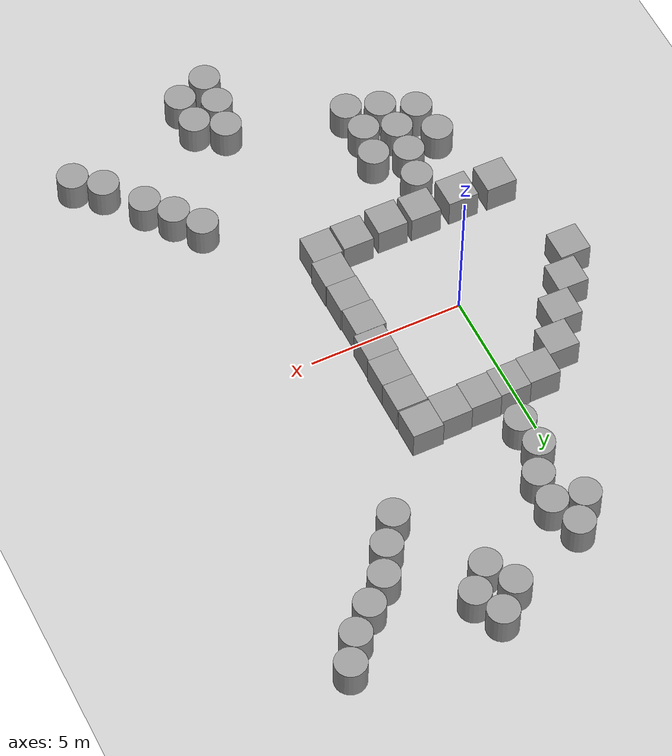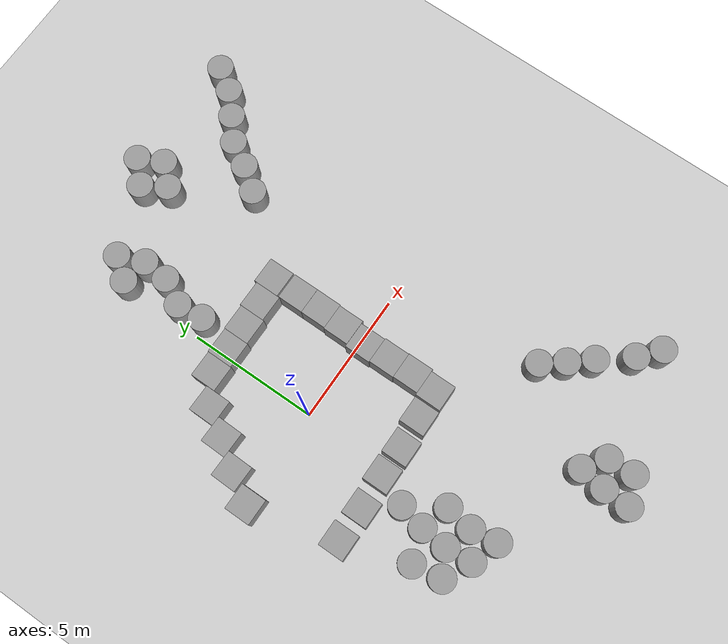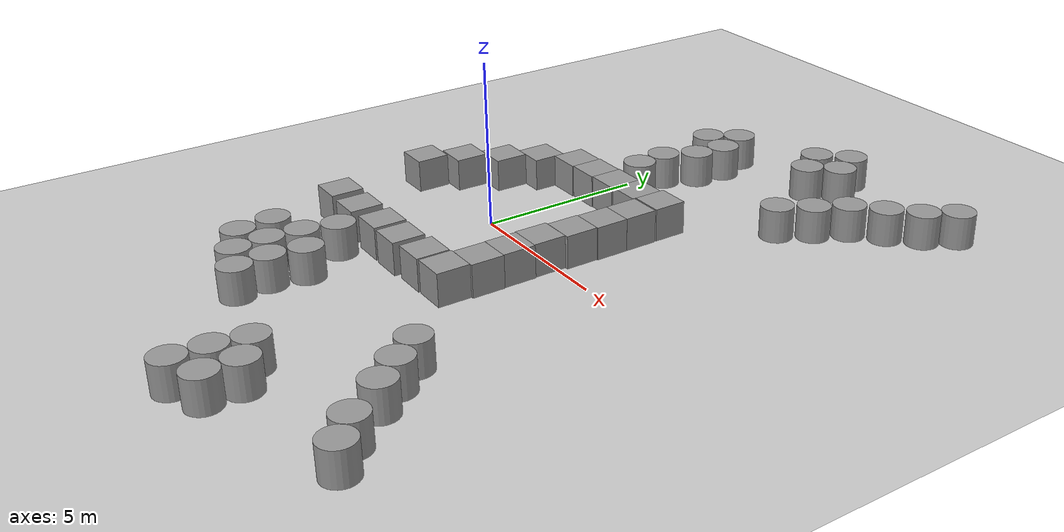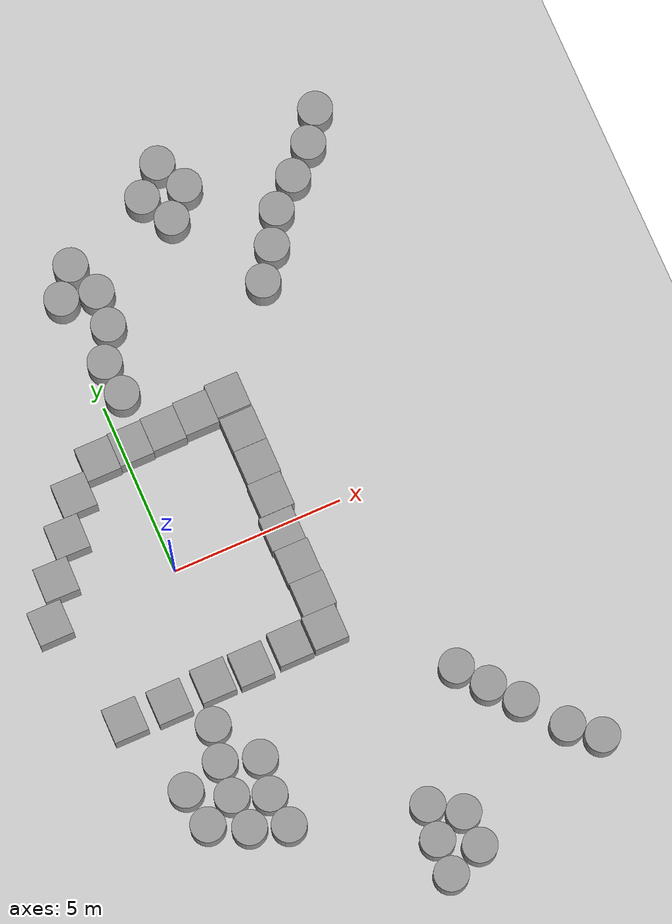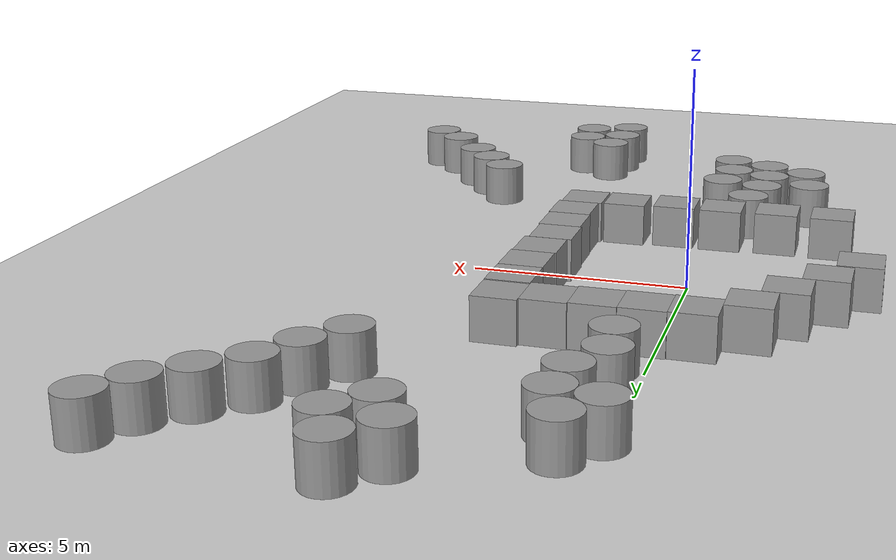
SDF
<sdf version="1.6">
 <world name="default">
  <model name="ground_plane">
   <static>1</static>
   <link name="link">
    <collision name="collision">
     <geometry><plane><normal>0 0 1</normal><size>100 100</size></plane></geometry>
     <surface>
      <contact><collide_bitmask>65535</collide_bitmask></contact>
      <friction><ode><mu>100</mu><mu2>50</mu2></ode></friction>
     </surface>
    </collision>
    <visual name="visual">
     <cast_shadows>0</cast_shadows>
     <geometry><plane><normal>0 0 1</normal><size>100 100</size></plane></geometry>
     <material>
      <script><uri>file://media/materials/scripts/gazebo.material</uri><name>Gazebo/Grey</name></script>
     </material>
    </visual>
   </link>
  </model>
  <light name="sun" type="directional">
   <pose>0 0 10 0 -0 0</pose>
   <diffuse>0.8 0.8 0.8 1</diffuse>
   <specular>0.2 0.2 0.2 1</specular>
   <attenuation>
    <range>1000</range>
    <constant>0.9</constant>
    <linear>0.01</linear>
    <quadratic>0.001</quadratic>
   </attenuation>
   <direction>-0.5 0.1 -0.9</direction>
  </light>
  <gravity>0 0 -9.8</gravity>
  <magnetic_field>6e-06 2.3e-05 -4.2e-05</magnetic_field>
  <atmosphere type="adiabatic"/>
  <physics name="default_physics" default="0" type="ode">
   <max_step_size>0.001</max_step_size>
   <real_time_factor>1</real_time_factor>
   <real_time_update_rate>1000</real_time_update_rate>
  </physics>
  <scene><ambient>0.4 0.4 0.4 1</ambient><background>0.7 0.7 0.7 1</background><shadows>1</shadows></scene>
  <spherical_coordinates>
   <surface_model>EARTH_WGS84</surface_model>
   <latitude_deg>0</latitude_deg>
   <longitude_deg>0</longitude_deg>
   <elevation>0</elevation>
   <heading_deg>0</heading_deg>
  </spherical_coordinates>
  <model name="unit_box">
   <pose>3.11319 -3.25022 0.499995 -0 1e-05 -0.000176</pose>
   <link name="link">
    <inertial>
     <mass>1</mass>
     <inertia>
      <ixx>0.166667</ixx>
      <ixy>0</ixy>
      <ixz>0</ixz>
      <iyy>0.166667</iyy>
      <iyz>0</iyz>
      <izz>0.166667</izz>
     </inertia>
    </inertial>
    <collision name="collision"><geometry><box><size>1 1 1</size></box></geometry></collision>
    <visual name="visual">
     <geometry><box><size>1 1 1</size></box></geometry>
     <material>
      <script><name>Gazebo/Grey</name><uri>file://media/materials/scripts/gazebo.material</uri></script>
     </material>
    </visual>
   </link>
  </model>
  <model name="unit_box_clone">
   <pose>3.18532 -2.25012 0.499995 0 -1e-05 -0.000455</pose>
   <link name="link">
    <inertial>
     <mass>1</mass>
     <inertia>
      <ixx>0.166667</ixx>
      <ixy>0</ixy>
      <ixz>0</ixz>
      <iyy>0.166667</iyy>
      <iyz>0</iyz>
      <izz>0.166667</izz>
     </inertia>
    </inertial>
    <collision name="collision"><geometry><box><size>1 1 1</size></box></geometry></collision>
    <visual name="visual">
     <geometry><box><size>1 1 1</size></box></geometry>
     <material>
      <script><name>Gazebo/Grey</name><uri>file://media/materials/scripts/gazebo.material</uri></script>
     </material>
    </visual>
   </link>
  </model>
  <model name="unit_box_clone_0">
   <pose>3.16452 -1.24999 0.499995 -1e-05 -0 -0.000646</pose>
   <link name="link">
    <inertial>
     <mass>1</mass>
     <inertia>
      <ixx>0.166667</ixx>
      <ixy>0</ixy>
      <ixz>0</ixz>
      <iyy>0.166667</iyy>
      <iyz>0</iyz>
      <izz>0.166667</izz>
     </inertia>
    </inertial>
    <collision name="collision"><geometry><box><size>1 1 1</size></box></geometry></collision>
    <visual name="visual">
     <geometry><box><size>1 1 1</size></box></geometry>
     <material>
      <script><name>Gazebo/Grey</name><uri>file://media/materials/scripts/gazebo.material</uri></script>
     </material>
    </visual>
   </link>
  </model>
  <model name="unit_box_clone_1">
   <pose>3.12887 -0.249946 0.499995 -1e-05 -0 -0.000676</pose>
   <link name="link">
    <inertial>
     <mass>1</mass>
     <inertia>
      <ixx>0.166667</ixx>
      <ixy>0</ixy>
      <ixz>0</ixz>
      <iyy>0.166667</iyy>
      <iyz>0</iyz>
      <izz>0.166667</izz>
     </inertia>
    </inertial>
    <collision name="collision"><geometry><box><size>1 1 1</size></box></geometry></collision>
    <visual name="visual">
     <geometry><box><size>1 1 1</size></box></geometry>
     <material>
      <script><name>Gazebo/Grey</name><uri>file://media/materials/scripts/gazebo.material</uri></script>
     </material>
    </visual>
   </link>
  </model>
  <model name="unit_box_clone_2">
   <pose>3.22252 0.752914 0.499995 1e-05 -0 -0.000428</pose>
   <link name="link">
    <inertial>
     <mass>1</mass>
     <inertia>
      <ixx>0.166667</ixx>
      <ixy>0</ixy>
      <ixz>0</ixz>
      <iyy>0.166667</iyy>
      <iyz>0</iyz>
      <izz>0.166667</izz>
     </inertia>
    </inertial>
    <collision name="collision"><geometry><box><size>1 1 1</size></box></geometry></collision>
    <visual name="visual">
     <geometry><box><size>1 1 1</size></box></geometry>
     <material>
      <script><name>Gazebo/Grey</name><uri>file://media/materials/scripts/gazebo.material</uri></script>
     </material>
    </visual>
   </link>
  </model>
  <model name="unit_box_clone_3">
   <pose>3.2532 1.75292 0.499995 0 -1e-05 -0.000436</pose>
   <link name="link">
    <inertial>
     <mass>1</mass>
     <inertia>
      <ixx>0.166667</ixx>
      <ixy>0</ixy>
      <ixz>0</ixz>
      <iyy>0.166667</iyy>
      <iyz>0</iyz>
      <izz>0.166667</izz>
     </inertia>
    </inertial>
    <collision name="collision"><geometry><box><size>1 1 1</size></box></geometry></collision>
    <visual name="visual">
     <geometry><box><size>1 1 1</size></box></geometry>
     <material>
      <script><name>Gazebo/Grey</name><uri>file://media/materials/scripts/gazebo.material</uri></script>
     </material>
    </visual>
   </link>
  </model>
  <model name="unit_box_clone_4">
   <pose>3.25119 2.75407 0.499995 0 -1e-05 0.001229</pose>
   <link name="link">
    <inertial>
     <mass>1</mass>
     <inertia>
      <ixx>0.166667</ixx>
      <ixy>0</ixy>
      <ixz>0</ixz>
      <iyy>0.166667</iyy>
      <iyz>0</iyz>
      <izz>0.166667</izz>
     </inertia>
    </inertial>
    <collision name="collision"><geometry><box><size>1 1 1</size></box></geometry></collision>
    <visual name="visual">
     <geometry><box><size>1 1 1</size></box></geometry>
     <material>
      <script><name>Gazebo/Grey</name><uri>file://media/materials/scripts/gazebo.material</uri></script>
     </material>
    </visual>
   </link>
  </model>
  <model name="unit_box_clone_5">
   <pose>3.2411 3.80241 0.499995 1e-05 -0 -0.000421</pose>
   <link name="link">
    <inertial>
     <mass>1</mass>
     <inertia>
      <ixx>0.166667</ixx>
      <ixy>0</ixy>
      <ixz>0</ixz>
      <iyy>0.166667</iyy>
      <iyz>0</iyz>
      <izz>0.166667</izz>
     </inertia>
    </inertial>
    <collision name="collision"><geometry><box><size>1 1 1</size></box></geometry></collision>
    <visual name="visual">
     <geometry><box><size>1 1 1</size></box></geometry>
     <material>
      <script><name>Gazebo/Grey</name><uri>file://media/materials/scripts/gazebo.material</uri></script>
     </material>
    </visual>
   </link>
  </model>
  <model name="unit_box_clone_6">
   <pose>2.24102 3.69759 0.499995 -0 -1e-05 -0.000427</pose>
   <link name="link">
    <inertial>
     <mass>1</mass>
     <inertia>
      <ixx>0.166667</ixx>
      <ixy>0</ixy>
      <ixz>0</ixz>
      <iyy>0.166667</iyy>
      <iyz>0</iyz>
      <izz>0.166667</izz>
     </inertia>
    </inertial>
    <collision name="collision"><geometry><box><size>1 1 1</size></box></geometry></collision>
    <visual name="visual">
     <geometry><box><size>1 1 1</size></box></geometry>
     <material>
      <script><name>Gazebo/Grey</name><uri>file://media/materials/scripts/gazebo.material</uri></script>
     </material>
    </visual>
   </link>
  </model>
  <model name="unit_box_clone_7">
   <pose>1.241 3.64825 0.499995 0 1e-05 -0.000431</pose>
   <link name="link">
    <inertial>
     <mass>1</mass>
     <inertia>
      <ixx>0.166667</ixx>
      <ixy>0</ixy>
      <ixz>0</ixz>
      <iyy>0.166667</iyy>
      <iyz>0</iyz>
      <izz>0.166667</izz>
     </inertia>
    </inertial>
    <collision name="collision"><geometry><box><size>1 1 1</size></box></geometry></collision>
    <visual name="visual">
     <geometry><box><size>1 1 1</size></box></geometry>
     <material>
      <script><name>Gazebo/Grey</name><uri>file://media/materials/scripts/gazebo.material</uri></script>
     </material>
    </visual>
   </link>
  </model>
  <model name="unit_box_clone_8">
   <pose>0.240941 3.61966 0.499995 0 -1e-05 -0.000425</pose>
   <link name="link">
    <inertial>
     <mass>1</mass>
     <inertia>
      <ixx>0.166667</ixx>
      <ixy>0</ixy>
      <ixz>0</ixz>
      <iyy>0.166667</iyy>
      <iyz>0</iyz>
      <izz>0.166667</izz>
     </inertia>
    </inertial>
    <collision name="collision"><geometry><box><size>1 1 1</size></box></geometry></collision>
    <visual name="visual">
     <geometry><box><size>1 1 1</size></box></geometry>
     <material>
      <script><name>Gazebo/Grey</name><uri>file://media/materials/scripts/gazebo.material</uri></script>
     </material>
    </visual>
   </link>
  </model>
  <model name="unit_box_clone_9">
   <pose>-0.759132 3.5903 0.499995 0 -1e-05 -0.000449</pose>
   <link name="link">
    <inertial>
     <mass>1</mass>
     <inertia>
      <ixx>0.166667</ixx>
      <ixy>0</ixy>
      <ixz>0</ixz>
      <iyy>0.166667</iyy>
      <iyz>0</iyz>
      <izz>0.166667</izz>
     </inertia>
    </inertial>
    <collision name="collision"><geometry><box><size>1 1 1</size></box></geometry></collision>
    <visual name="visual">
     <geometry><box><size>1 1 1</size></box></geometry>
     <material>
      <script><name>Gazebo/Grey</name><uri>file://media/materials/scripts/gazebo.material</uri></script>
     </material>
    </visual>
   </link>
  </model>
  <model name="unit_box_clone_10">
   <pose>2.05512 -3.27893 0.499995 -0 1e-05 -0.000176</pose>
   <link name="link">
    <inertial>
     <mass>1</mass>
     <inertia>
      <ixx>0.166667</ixx>
      <ixy>0</ixy>
      <ixz>0</ixz>
      <iyy>0.166667</iyy>
      <iyz>0</iyz>
      <izz>0.166667</izz>
     </inertia>
    </inertial>
    <collision name="collision"><geometry><box><size>1 1 1</size></box></geometry></collision>
    <visual name="visual">
     <geometry><box><size>1 1 1</size></box></geometry>
     <material>
      <script><name>Gazebo/Grey</name><uri>file://media/materials/scripts/gazebo.material</uri></script>
     </material>
    </visual>
   </link>
  </model>
  <model name="unit_box_clone_11">
   <pose>0.840589 -3.37428 0.499995 1e-05 0 -0.000176</pose>
   <link name="link">
    <inertial>
     <mass>1</mass>
     <inertia>
      <ixx>0.166667</ixx>
      <ixy>0</ixy>
      <ixz>0</ixz>
      <iyy>0.166667</iyy>
      <iyz>0</iyz>
      <izz>0.166667</izz>
     </inertia>
    </inertial>
    <collision name="collision"><geometry><box><size>1 1 1</size></box></geometry></collision>
    <visual name="visual">
     <geometry><box><size>1 1 1</size></box></geometry>
     <material>
      <script><name>Gazebo/Grey</name><uri>file://media/materials/scripts/gazebo.material</uri></script>
     </material>
    </visual>
   </link>
  </model>
  <model name="unit_box_clone_12">
   <pose>-0.292599 -3.36376 0.499995 0 -1e-05 -0.000176</pose>
   <link name="link">
    <inertial>
     <mass>1</mass>
     <inertia>
      <ixx>0.166667</ixx>
      <ixy>0</ixy>
      <ixz>0</ixz>
      <iyy>0.166667</iyy>
      <iyz>0</iyz>
      <izz>0.166667</izz>
     </inertia>
    </inertial>
    <collision name="collision"><geometry><box><size>1 1 1</size></box></geometry></collision>
    <visual name="visual">
     <geometry><box><size>1 1 1</size></box></geometry>
     <material>
      <script><name>Gazebo/Grey</name><uri>file://media/materials/scripts/gazebo.material</uri></script>
     </material>
    </visual>
   </link>
  </model>
  <model name="unit_box_clone_13">
   <pose>-1.62309 -3.43111 0.499995 1e-05 0 -0.000176</pose>
   <link name="link">
    <inertial>
     <mass>1</mass>
     <inertia>
      <ixx>0.166667</ixx>
      <ixy>0</ixy>
      <ixz>0</ixz>
      <iyy>0.166667</iyy>
      <iyz>0</iyz>
      <izz>0.166667</izz>
     </inertia>
    </inertial>
    <collision name="collision"><geometry><box><size>1 1 1</size></box></geometry></collision>
    <visual name="visual">
     <geometry><box><size>1 1 1</size></box></geometry>
     <material>
      <script><name>Gazebo/Grey</name><uri>file://media/materials/scripts/gazebo.material</uri></script>
     </material>
    </visual>
   </link>
  </model>
  <model name="unit_box_clone_14">
   <pose>-2.93637 -3.40646 0.499995 0 -1e-05 -0.000176</pose>
   <link name="link">
    <inertial>
     <mass>1</mass>
     <inertia>
      <ixx>0.166667</ixx>
      <ixy>0</ixy>
      <ixz>0</ixz>
      <iyy>0.166667</iyy>
      <iyz>0</iyz>
      <izz>0.166667</izz>
     </inertia>
    </inertial>
    <collision name="collision"><geometry><box><size>1 1 1</size></box></geometry></collision>
    <visual name="visual">
     <geometry><box><size>1 1 1</size></box></geometry>
     <material>
      <script><name>Gazebo/Grey</name><uri>file://media/materials/scripts/gazebo.material</uri></script>
     </material>
    </visual>
   </link>
  </model>
  <model name="unit_box_clone_15">
   <pose>-1.76261 2.91246 0.499995 1e-05 -0 -0.006714</pose>
   <link name="link">
    <inertial>
     <mass>1</mass>
     <inertia>
      <ixx>0.166667</ixx>
      <ixy>0</ixy>
      <ixz>0</ixz>
      <iyy>0.166667</iyy>
      <iyz>0</iyz>
      <izz>0.166667</izz>
     </inertia>
    </inertial>
    <collision name="collision"><geometry><box><size>1 1 1</size></box></geometry></collision>
    <visual name="visual">
     <geometry><box><size>1 1 1</size></box></geometry>
     <material>
      <script><name>Gazebo/Grey</name><uri>file://media/materials/scripts/gazebo.material</uri></script>
     </material>
    </visual>
   </link>
  </model>
  <model name="unit_box_clone_16">
   <pose>-2.39674 1.91786 0.499995 1e-05 -0 -0.01798</pose>
   <link name="link">
    <inertial>
     <mass>1</mass>
     <inertia>
      <ixx>0.166667</ixx>
      <ixy>0</ixy>
      <ixz>0</ixz>
      <iyy>0.166667</iyy>
      <iyz>0</iyz>
      <izz>0.166667</izz>
     </inertia>
    </inertial>
    <collision name="collision"><geometry><box><size>1 1 1</size></box></geometry></collision>
    <visual name="visual">
     <geometry><box><size>1 1 1</size></box></geometry>
     <material>
      <script><name>Gazebo/Grey</name><uri>file://media/materials/scripts/gazebo.material</uri></script>
     </material>
    </visual>
   </link>
  </model>
  <model name="unit_box_clone_17">
   <pose>-3.13664 0.931207 0.499995 1e-05 -0 -0.0189</pose>
   <link name="link">
    <inertial>
     <mass>1</mass>
     <inertia>
      <ixx>0.166667</ixx>
      <ixy>0</ixy>
      <ixz>0</ixz>
      <iyy>0.166667</iyy>
      <iyz>0</iyz>
      <izz>0.166667</izz>
     </inertia>
    </inertial>
    <collision name="collision"><geometry><box><size>1 1 1</size></box></geometry></collision>
    <visual name="visual">
     <geometry><box><size>1 1 1</size></box></geometry>
     <material>
      <script><name>Gazebo/Grey</name><uri>file://media/materials/scripts/gazebo.material</uri></script>
     </material>
    </visual>
   </link>
  </model>
  <model name="unit_box_clone_18">
   <pose>-3.76039 -0.115374 0.499995 0 -1e-05 -0.000176</pose>
   <link name="link">
    <inertial>
     <mass>1</mass>
     <inertia>
      <ixx>0.166667</ixx>
      <ixy>0</ixy>
      <ixz>0</ixz>
      <iyy>0.166667</iyy>
      <iyz>0</iyz>
      <izz>0.166667</izz>
     </inertia>
    </inertial>
    <collision name="collision"><geometry><box><size>1 1 1</size></box></geometry></collision>
    <visual name="visual">
     <geometry><box><size>1 1 1</size></box></geometry>
     <material>
      <script><name>Gazebo/Grey</name><uri>file://media/materials/scripts/gazebo.material</uri></script>
     </material>
    </visual>
   </link>
  </model>
  <model name="unit_cylinder">
   <pose>-1.99933 -6.96028 0.5 0 0 -0.021824</pose>
   <link name="link">
    <inertial>
     <mass>1</mass>
     <inertia><ixx>0.145833</ixx><ixy>0</ixy><ixz>0</ixz><iyy>0.145833</iyy><iyz>0</iyz><izz>0.125</izz></inertia>
    </inertial>
    <collision name="collision">
     <geometry><cylinder><radius>0.5</radius><length>1</length></cylinder></geometry>
    </collision>
    <visual name="visual">
     <geometry><cylinder><radius>0.5</radius><length>1</length></cylinder></geometry>
     <material>
      <script><name>Gazebo/Grey</name><uri>file://media/materials/scripts/gazebo.material</uri></script>
     </material>
    </visual>
   </link>
  </model>
  <model name="unit_cylinder_clone">
   <pose>-0.997281 -5.49276 0.499994 -4e-06 -1e-06 0.235382</pose>
   <link name="link">
    <inertial>
     <mass>1</mass>
     <inertia><ixx>0.145833</ixx><ixy>0</ixy><ixz>0</ixz><iyy>0.145833</iyy><iyz>0</iyz><izz>0.125</izz></inertia>
    </inertial>
    <collision name="collision">
     <geometry><cylinder><radius>0.5</radius><length>1</length></cylinder></geometry>
    </collision>
    <visual name="visual">
     <geometry><cylinder><radius>0.5</radius><length>1</length></cylinder></geometry>
     <material>
      <script><name>Gazebo/Grey</name><uri>file://media/materials/scripts/gazebo.material</uri></script>
     </material>
    </visual>
   </link>
  </model>
  <model name="unit_cylinder_clone_0">
   <pose>-1.08314 -6.48908 0.499997 3e-06 -0 0.258592</pose>
   <link name="link">
    <inertial>
     <mass>1</mass>
     <inertia><ixx>0.145833</ixx><ixy>0</ixy><ixz>0</ixz><iyy>0.145833</iyy><iyz>0</iyz><izz>0.125</izz></inertia>
    </inertial>
    <collision name="collision">
     <geometry><cylinder><radius>0.5</radius><length>1</length></cylinder></geometry>
    </collision>
    <visual name="visual">
     <geometry><cylinder><radius>0.5</radius><length>1</length></cylinder></geometry>
     <material>
      <script><name>Gazebo/Grey</name><uri>file://media/materials/scripts/gazebo.material</uri></script>
     </material>
    </visual>
   </link>
  </model>
  <model name="unit_cylinder_clone_1">
   <pose>-0.1082 -6.86108 0.499991 -0 -0 -0.122401</pose>
   <link name="link">
    <inertial>
     <mass>1</mass>
     <inertia><ixx>0.145833</ixx><ixy>0</ixy><ixz>0</ixz><iyy>0.145833</iyy><iyz>0</iyz><izz>0.125</izz></inertia>
    </inertial>
    <collision name="collision">
     <geometry><cylinder><radius>0.5</radius><length>1</length></cylinder></geometry>
    </collision>
    <visual name="visual">
     <geometry><cylinder><radius>0.5</radius><length>1</length></cylinder></geometry>
     <material>
      <script><name>Gazebo/Grey</name><uri>file://media/materials/scripts/gazebo.material</uri></script>
     </material>
    </visual>
   </link>
  </model>
  <model name="unit_cylinder_clone_2">
   <pose>0.055164 -5.83206 0.49999 0 -0 -0.101902</pose>
   <link name="link">
    <inertial>
     <mass>1</mass>
     <inertia><ixx>0.145833</ixx><ixy>0</ixy><ixz>0</ixz><iyy>0.145833</iyy><iyz>0</iyz><izz>0.125</izz></inertia>
    </inertial>
    <collision name="collision">
     <geometry><cylinder><radius>0.5</radius><length>1</length></cylinder></geometry>
    </collision>
    <visual name="visual">
     <geometry><cylinder><radius>0.5</radius><length>1</length></cylinder></geometry>
     <material>
      <script><name>Gazebo/Grey</name><uri>file://media/materials/scripts/gazebo.material</uri></script>
     </material>
    </visual>
   </link>
  </model>
  <model name="unit_cylinder_clone_3">
   <pose>0.491966 6.02711 0.499992 -3e-06 -4e-06 -0.020196</pose>
   <link name="link">
    <inertial>
     <mass>1</mass>
     <inertia><ixx>0.145833</ixx><ixy>0</ixy><ixz>0</ixz><iyy>0.145833</iyy><iyz>0</iyz><izz>0.125</izz></inertia>
    </inertial>
    <collision name="collision">
     <geometry><cylinder><radius>0.5</radius><length>1</length></cylinder></geometry>
    </collision>
    <visual name="visual">
     <geometry><cylinder><radius>0.5</radius><length>1</length></cylinder></geometry>
     <material>
      <script><name>Gazebo/Grey</name><uri>file://media/materials/scripts/gazebo.material</uri></script>
     </material>
    </visual>
   </link>
  </model>
  <model name="unit_cylinder_clone_4">
   <pose>0.999768 6.96436 0.5 0 -0 -0.0226</pose>
   <link name="link">
    <inertial>
     <mass>1</mass>
     <inertia><ixx>0.145833</ixx><ixy>0</ixy><ixz>0</ixz><iyy>0.145833</iyy><iyz>0</iyz><izz>0.125</izz></inertia>
    </inertial>
    <collision name="collision">
     <geometry><cylinder><radius>0.5</radius><length>1</length></cylinder></geometry>
    </collision>
    <visual name="visual">
     <geometry><cylinder><radius>0.5</radius><length>1</length></cylinder></geometry>
     <material>
      <script><name>Gazebo/Grey</name><uri>file://media/materials/scripts/gazebo.material</uri></script>
     </material>
    </visual>
   </link>
  </model>
  <model name="unit_cylinder_clone_6">
   <pose>0.094115 8.15805 0.499997 3e-06 4e-06 -0.195249</pose>
   <link name="link">
    <inertial>
     <mass>1</mass>
     <inertia><ixx>0.145833</ixx><ixy>0</ixy><ixz>0</ixz><iyy>0.145833</iyy><iyz>0</iyz><izz>0.125</izz></inertia>
    </inertial>
    <collision name="collision">
     <geometry><cylinder><radius>0.5</radius><length>1</length></cylinder></geometry>
    </collision>
    <visual name="visual">
     <geometry><cylinder><radius>0.5</radius><length>1</length></cylinder></geometry>
     <material>
      <script><name>Gazebo/Grey</name><uri>file://media/materials/scripts/gazebo.material</uri></script>
     </material>
    </visual>
   </link>
  </model>
  <model name="unit_cylinder_clone_7">
   <pose>-2.17353 -5.85458 0.499994 -3e-06 -2e-06 -0.021824</pose>
   <link name="link">
    <inertial>
     <mass>1</mass>
     <inertia><ixx>0.145833</ixx><ixy>0</ixy><ixz>0</ixz><iyy>0.145833</iyy><iyz>0</iyz><izz>0.125</izz></inertia>
    </inertial>
    <collision name="collision">
     <geometry><cylinder><radius>0.5</radius><length>1</length></cylinder></geometry>
    </collision>
    <visual name="visual">
     <geometry><cylinder><radius>0.5</radius><length>1</length></cylinder></geometry>
     <material>
      <script><name>Gazebo/Grey</name><uri>file://media/materials/scripts/gazebo.material</uri></script>
     </material>
    </visual>
   </link>
  </model>
  <model name="unit_cylinder_clone_4_clone_1">
   <pose>5.99266 -5.67618 0.499997 3e-06 -1e-06 -0.036431</pose>
   <link name="link">
    <inertial>
     <mass>1</mass>
     <inertia><ixx>0.145833</ixx><ixy>0</ixy><ixz>0</ixz><iyy>0.145833</iyy><iyz>0</iyz><izz>0.125</izz></inertia>
    </inertial>
    <collision name="collision">
     <geometry><cylinder><radius>0.5</radius><length>1</length></cylinder></geometry>
    </collision>
    <visual name="visual">
     <geometry><cylinder><radius>0.5</radius><length>1</length></cylinder></geometry>
     <material>
      <script><name>Gazebo/Grey</name><uri>file://media/materials/scripts/gazebo.material</uri></script>
     </material>
    </visual>
   </link>
  </model>
  <model name="unit_cylinder_clone_4_clone_2">
   <pose>6.60375 -6.46775 0.499996 3e-06 1e-06 -0.007266</pose>
   <link name="link">
    <inertial>
     <mass>1</mass>
     <inertia><ixx>0.145833</ixx><ixy>0</ixy><ixz>0</ixz><iyy>0.145833</iyy><iyz>0</iyz><izz>0.125</izz></inertia>
    </inertial>
    <collision name="collision">
     <geometry><cylinder><radius>0.5</radius><length>1</length></cylinder></geometry>
    </collision>
    <visual name="visual">
     <geometry><cylinder><radius>0.5</radius><length>1</length></cylinder></geometry>
     <material>
      <script><name>Gazebo/Grey</name><uri>file://media/materials/scripts/gazebo.material</uri></script>
     </material>
    </visual>
   </link>
  </model>
  <model name="unit_cylinder_clone_4_clone_3">
   <pose>7.24538 -7.23788 0.499999 0 0 -0.021824</pose>
   <link name="link">
    <inertial>
     <mass>1</mass>
     <inertia><ixx>0.145833</ixx><ixy>0</ixy><ixz>0</ixz><iyy>0.145833</iyy><iyz>0</iyz><izz>0.125</izz></inertia>
    </inertial>
    <collision name="collision">
     <geometry><cylinder><radius>0.5</radius><length>1</length></cylinder></geometry>
    </collision>
    <visual name="visual">
     <geometry><cylinder><radius>0.5</radius><length>1</length></cylinder></geometry>
     <material>
      <script><name>Gazebo/Grey</name><uri>file://media/materials/scripts/gazebo.material</uri></script>
     </material>
    </visual>
   </link>
  </model>
  <model name="unit_cylinder_clone_4_clone_4">
   <pose>-0.985821 -7.48441 0.5 0 0 -0.045156</pose>
   <link name="link">
    <inertial>
     <mass>1</mass>
     <inertia><ixx>0.145833</ixx><ixy>0</ixy><ixz>0</ixz><iyy>0.145833</iyy><iyz>0</iyz><izz>0.125</izz></inertia>
    </inertial>
    <collision name="collision">
     <geometry><cylinder><radius>0.5</radius><length>1</length></cylinder></geometry>
    </collision>
    <visual name="visual">
     <geometry><cylinder><radius>0.5</radius><length>1</length></cylinder></geometry>
     <material>
      <script><name>Gazebo/Grey</name><uri>file://media/materials/scripts/gazebo.material</uri></script>
     </material>
    </visual>
   </link>
  </model>
  <model name="unit_cylinder_clone_4_clone_5">
   <pose>-0.773952 -4.48853 0.499999 0 0 -0.021824</pose>
   <link name="link">
    <inertial>
     <mass>1</mass>
     <inertia><ixx>0.145833</ixx><ixy>0</ixy><ixz>0</ixz><iyy>0.145833</iyy><iyz>0</iyz><izz>0.125</izz></inertia>
    </inertial>
    <collision name="collision">
     <geometry><cylinder><radius>0.5</radius><length>1</length></cylinder></geometry>
    </collision>
    <visual name="visual">
     <geometry><cylinder><radius>0.5</radius><length>1</length></cylinder></geometry>
     <material>
      <script><name>Gazebo/Grey</name><uri>file://media/materials/scripts/gazebo.material</uri></script>
     </material>
    </visual>
   </link>
  </model>
  <model name="unit_cylinder_clone_4_clone_6">
   <pose>0.032878 -7.85109 0.499994 -4e-06 -3e-06 -0.022111</pose>
   <link name="link">
    <inertial>
     <mass>1</mass>
     <inertia><ixx>0.145833</ixx><ixy>0</ixy><ixz>0</ixz><iyy>0.145833</iyy><iyz>0</iyz><izz>0.125</izz></inertia>
    </inertial>
    <collision name="collision">
     <geometry><cylinder><radius>0.5</radius><length>1</length></cylinder></geometry>
    </collision>
    <visual name="visual">
     <geometry><cylinder><radius>0.5</radius><length>1</length></cylinder></geometry>
     <material>
      <script><name>Gazebo/Grey</name><uri>file://media/materials/scripts/gazebo.material</uri></script>
     </material>
    </visual>
   </link>
  </model>
  <model name="unit_cylinder_clone_4_clone_7">
   <pose>0.586466 5.0311 0.499994 -3e-06 -1e-06 -0.020188</pose>
   <link name="link">
    <inertial>
     <mass>1</mass>
     <inertia><ixx>0.145833</ixx><ixy>0</ixy><ixz>0</ixz><iyy>0.145833</iyy><iyz>0</iyz><izz>0.125</izz></inertia>
    </inertial>
    <collision name="collision">
     <geometry><cylinder><radius>0.5</radius><length>1</length></cylinder></geometry>
    </collision>
    <visual name="visual">
     <geometry><cylinder><radius>0.5</radius><length>1</length></cylinder></geometry>
     <material>
      <script><name>Gazebo/Grey</name><uri>file://media/materials/scripts/gazebo.material</uri></script>
     </material>
    </visual>
   </link>
  </model>
  <model name="unit_cylinder_clone_4_clone_10">
   <pose>5.44845 6.38504 0.499997 4e-06 3e-06 -0.021822</pose>
   <link name="link">
    <inertial>
     <mass>1</mass>
     <inertia><ixx>0.145833</ixx><ixy>0</ixy><ixz>0</ixz><iyy>0.145833</iyy><iyz>0</iyz><izz>0.125</izz></inertia>
    </inertial>
    <collision name="collision">
     <geometry><cylinder><radius>0.5</radius><length>1</length></cylinder></geometry>
    </collision>
    <visual name="visual">
     <geometry><cylinder><radius>0.5</radius><length>1</length></cylinder></geometry>
     <material>
      <script><name>Gazebo/Grey</name><uri>file://media/materials/scripts/gazebo.material</uri></script>
     </material>
    </visual>
   </link>
  </model>
  <model name="unit_cylinder_clone_4_clone_11">
   <pose>6.08028 7.23527 0.499999 0 0 -0.021824</pose>
   <link name="link">
    <inertial>
     <mass>1</mass>
     <inertia><ixx>0.145833</ixx><ixy>0</ixy><ixz>0</ixz><iyy>0.145833</iyy><iyz>0</iyz><izz>0.125</izz></inertia>
    </inertial>
    <collision name="collision">
     <geometry><cylinder><radius>0.5</radius><length>1</length></cylinder></geometry>
    </collision>
    <visual name="visual">
     <geometry><cylinder><radius>0.5</radius><length>1</length></cylinder></geometry>
     <material>
      <script><name>Gazebo/Grey</name><uri>file://media/materials/scripts/gazebo.material</uri></script>
     </material>
    </visual>
   </link>
  </model>
  <model name="unit_cylinder_clone_4_clone_12">
   <pose>6.61088 8.12841 0.499991 -0 -0 -0.021824</pose>
   <link name="link">
    <inertial>
     <mass>1</mass>
     <inertia><ixx>0.145833</ixx><ixy>0</ixy><ixz>0</ixz><iyy>0.145833</iyy><iyz>0</iyz><izz>0.125</izz></inertia>
    </inertial>
    <collision name="collision">
     <geometry><cylinder><radius>0.5</radius><length>1</length></cylinder></geometry>
    </collision>
    <visual name="visual">
     <geometry><cylinder><radius>0.5</radius><length>1</length></cylinder></geometry>
     <material>
      <script><name>Gazebo/Grey</name><uri>file://media/materials/scripts/gazebo.material</uri></script>
     </material>
    </visual>
   </link>
  </model>
  <model name="unit_cylinder_clone_4_clone_13">
   <pose>7.41249 8.816 0.499991 -0 -0 -0.021824</pose>
   <link name="link">
    <inertial>
     <mass>1</mass>
     <inertia><ixx>0.145833</ixx><ixy>0</ixy><ixz>0</ixz><iyy>0.145833</iyy><iyz>0</iyz><izz>0.125</izz></inertia>
    </inertial>
    <collision name="collision">
     <geometry><cylinder><radius>0.5</radius><length>1</length></cylinder></geometry>
    </collision>
    <visual name="visual">
     <geometry><cylinder><radius>0.5</radius><length>1</length></cylinder></geometry>
     <material>
      <script><name>Gazebo/Grey</name><uri>file://media/materials/scripts/gazebo.material</uri></script>
     </material>
    </visual>
   </link>
  </model>
  <model name="unit_cylinder_clone_4_clone_14">
   <pose>8.18771 9.52145 0.499999 0 0 -0.021824</pose>
   <link name="link">
    <inertial>
     <mass>1</mass>
     <inertia><ixx>0.145833</ixx><ixy>0</ixy><ixz>0</ixz><iyy>0.145833</iyy><iyz>0</iyz><izz>0.125</izz></inertia>
    </inertial>
    <collision name="collision">
     <geometry><cylinder><radius>0.5</radius><length>1</length></cylinder></geometry>
    </collision>
    <visual name="visual">
     <geometry><cylinder><radius>0.5</radius><length>1</length></cylinder></geometry>
     <material>
      <script><name>Gazebo/Grey</name><uri>file://media/materials/scripts/gazebo.material</uri></script>
     </material>
    </visual>
   </link>
  </model>
  <model name="unit_cylinder_clone_4_clone_15">
   <pose>8.75616 10.3451 0.499999 0 0 -0.021824</pose>
   <link name="link">
    <inertial>
     <mass>1</mass>
     <inertia><ixx>0.145833</ixx><ixy>0</ixy><ixz>0</ixz><iyy>0.145833</iyy><iyz>0</iyz><izz>0.125</izz></inertia>
    </inertial>
    <collision name="collision">
     <geometry><cylinder><radius>0.5</radius><length>1</length></cylinder></geometry>
    </collision>
    <visual name="visual">
     <geometry><cylinder><radius>0.5</radius><length>1</length></cylinder></geometry>
     <material>
      <script><name>Gazebo/Grey</name><uri>file://media/materials/scripts/gazebo.material</uri></script>
     </material>
    </visual>
   </link>
  </model>
  <model name="unit_cylinder_clone_4_clone_16">
   <pose>1.07486 7.96268 0.499991 -0 -0 -0.038193</pose>
   <link name="link">
    <inertial>
     <mass>1</mass>
     <inertia><ixx>0.145833</ixx><ixy>0</ixy><ixz>0</ixz><iyy>0.145833</iyy><iyz>0</iyz><izz>0.125</izz></inertia>
    </inertial>
    <collision name="collision">
     <geometry><cylinder><radius>0.5</radius><length>1</length></cylinder></geometry>
    </collision>
    <visual name="visual">
     <geometry><cylinder><radius>0.5</radius><length>1</length></cylinder></geometry>
     <material>
      <script><name>Gazebo/Grey</name><uri>file://media/materials/scripts/gazebo.material</uri></script>
     </material>
    </visual>
   </link>
  </model>
  <model name="unit_cylinder_clone_4_clone_17">
   <pose>0.704692 8.95002 0.499992 -3e-06 -4e-06 0.047303</pose>
   <link name="link">
    <inertial>
     <mass>1</mass>
     <inertia><ixx>0.145833</ixx><ixy>0</ixy><ixz>0</ixz><iyy>0.145833</iyy><iyz>0</iyz><izz>0.125</izz></inertia>
    </inertial>
    <collision name="collision">
     <geometry><cylinder><radius>0.5</radius><length>1</length></cylinder></geometry>
    </collision>
    <visual name="visual">
     <geometry><cylinder><radius>0.5</radius><length>1</length></cylinder></geometry>
     <material>
      <script><name>Gazebo/Grey</name><uri>file://media/materials/scripts/gazebo.material</uri></script>
     </material>
    </visual>
   </link>
  </model>
  <model name="unit_cylinder_clone_4_clone_clone">
   <pose>8.13478 -8.36737 0.499997 3e-06 1e-06 -0.023794</pose>
   <link name="link">
    <inertial>
     <mass>1</mass>
     <inertia><ixx>0.145833</ixx><ixy>0</ixy><ixz>0</ixz><iyy>0.145833</iyy><iyz>0</iyz><izz>0.125</izz></inertia>
    </inertial>
    <collision name="collision">
     <geometry><cylinder><radius>0.5</radius><length>1</length></cylinder></geometry>
    </collision>
    <visual name="visual">
     <geometry><cylinder><radius>0.5</radius><length>1</length></cylinder></geometry>
     <material>
      <script><name>Gazebo/Grey</name><uri>file://media/materials/scripts/gazebo.material</uri></script>
     </material>
    </visual>
   </link>
  </model>
  <model name="unit_cylinder_clone_4_clone_clone_0">
   <pose>8.89 -9.02296 0.499996 3e-06 2e-06 -0.024566</pose>
   <link name="link">
    <inertial>
     <mass>1</mass>
     <inertia><ixx>0.145833</ixx><ixy>0</ixy><ixz>0</ixz><iyy>0.145833</iyy><iyz>0</iyz><izz>0.125</izz></inertia>
    </inertial>
    <collision name="collision">
     <geometry><cylinder><radius>0.5</radius><length>1</length></cylinder></geometry>
    </collision>
    <visual name="visual">
     <geometry><cylinder><radius>0.5</radius><length>1</length></cylinder></geometry>
     <material>
      <script><name>Gazebo/Grey</name><uri>file://media/materials/scripts/gazebo.material</uri></script>
     </material>
    </visual>
   </link>
  </model>
  <model name="unit_cylinder_clone_4_clone_clone_1">
   <pose>3.30261 9.93265 0.499994 -3e-06 -2e-06 -0.048205</pose>
   <link name="link">
    <inertial>
     <mass>1</mass>
     <inertia><ixx>0.145833</ixx><ixy>0</ixy><ixz>0</ixz><iyy>0.145833</iyy><iyz>0</iyz><izz>0.125</izz></inertia>
    </inertial>
    <collision name="collision">
     <geometry><cylinder><radius>0.5</radius><length>1</length></cylinder></geometry>
    </collision>
    <visual name="visual">
     <geometry><cylinder><radius>0.5</radius><length>1</length></cylinder></geometry>
     <material>
      <script><name>Gazebo/Grey</name><uri>file://media/materials/scripts/gazebo.material</uri></script>
     </material>
    </visual>
   </link>
  </model>
  <model name="unit_cylinder_clone_4_clone_clone_3">
   <pose>4.51487 9.76924 0.499996 4e-06 -2e-06 0.001842</pose>
   <link name="link">
    <inertial>
     <mass>1</mass>
     <inertia><ixx>0.145833</ixx><ixy>0</ixy><ixz>0</ixz><iyy>0.145833</iyy><iyz>0</iyz><izz>0.125</izz></inertia>
    </inertial>
    <collision name="collision">
     <geometry><cylinder><radius>0.5</radius><length>1</length></cylinder></geometry>
    </collision>
    <visual name="visual">
     <geometry><cylinder><radius>0.5</radius><length>1</length></cylinder></geometry>
     <material>
      <script><name>Gazebo/Grey</name><uri>file://media/materials/scripts/gazebo.material</uri></script>
     </material>
    </visual>
   </link>
  </model>
  <model name="unit_cylinder_clone_4_clone_clone_4">
   <pose>3.82206 9.04812 0.5 0 0 -0.02442</pose>
   <link name="link">
    <inertial>
     <mass>1</mass>
     <inertia><ixx>0.145833</ixx><ixy>0</ixy><ixz>0</ixz><iyy>0.145833</iyy><iyz>0</iyz><izz>0.125</izz></inertia>
    </inertial>
    <collision name="collision">
     <geometry><cylinder><radius>0.5</radius><length>1</length></cylinder></geometry>
    </collision>
    <visual name="visual">
     <geometry><cylinder><radius>0.5</radius><length>1</length></cylinder></geometry>
     <material>
      <script><name>Gazebo/Grey</name><uri>file://media/materials/scripts/gazebo.material</uri></script>
     </material>
    </visual>
   </link>
  </model>
  <model name="unit_cylinder_clone_4_clone_clone_5">
   <pose>4.07735 10.6685 0.499992 -3e-06 3e-06 0.029324</pose>
   <link name="link">
    <inertial>
     <mass>1</mass>
     <inertia><ixx>0.145833</ixx><ixy>0</ixy><ixz>0</ixz><iyy>0.145833</iyy><iyz>0</iyz><izz>0.125</izz></inertia>
    </inertial>
    <collision name="collision">
     <geometry><cylinder><radius>0.5</radius><length>1</length></cylinder></geometry>
    </collision>
    <visual name="visual">
     <geometry><cylinder><radius>0.5</radius><length>1</length></cylinder></geometry>
     <material>
      <script><name>Gazebo/Grey</name><uri>file://media/materials/scripts/gazebo.material</uri></script>
     </material>
    </visual>
   </link>
  </model>
  <model name="unit_cylinder_clone_4_clone_clone_6">
   <pose>3.54904 -10.8513 0.501021 0.000264 0.002034 0.084448</pose>
   <link name="link">
    <inertial>
     <mass>1</mass>
     <inertia><ixx>0.145833</ixx><ixy>0</ixy><ixz>0</ixz><iyy>0.145833</iyy><iyz>0</iyz><izz>0.125</izz></inertia>
    </inertial>
    <collision name="collision">
     <geometry><cylinder><radius>0.5</radius><length>1</length></cylinder></geometry>
    </collision>
    <visual name="visual">
     <geometry><cylinder><radius>0.5</radius><length>1</length></cylinder></geometry>
     <material>
      <script><name>Gazebo/Grey</name><uri>file://media/materials/scripts/gazebo.material</uri></script>
     </material>
    </visual>
   </link>
  </model>
  <model name="unit_cylinder_clone_4_clone_clone_7">
   <pose>3.58571 -9.84379 0.499994 -3e-06 -2e-06 -0.042592</pose>
   <link name="link">
    <inertial>
     <mass>1</mass>
     <inertia><ixx>0.145833</ixx><ixy>0</ixy><ixz>0</ixz><iyy>0.145833</iyy><iyz>0</iyz><izz>0.125</izz></inertia>
    </inertial>
    <collision name="collision">
     <geometry><cylinder><radius>0.5</radius><length>1</length></cylinder></geometry>
    </collision>
    <visual name="visual">
     <geometry><cylinder><radius>0.5</radius><length>1</length></cylinder></geometry>
     <material>
      <script><name>Gazebo/Grey</name><uri>file://media/materials/scripts/gazebo.material</uri></script>
     </material>
    </visual>
   </link>
  </model>
  <model name="unit_cylinder_clone_4_clone_clone_8">
   <pose>3.7282 -8.85377 0.499994 -3e-06 -2e-06 -0.023507</pose>
   <link name="link">
    <inertial>
     <mass>1</mass>
     <inertia><ixx>0.145833</ixx><ixy>0</ixy><ixz>0</ixz><iyy>0.145833</iyy><iyz>0</iyz><izz>0.125</izz></inertia>
    </inertial>
    <collision name="collision">
     <geometry><cylinder><radius>0.5</radius><length>1</length></cylinder></geometry>
    </collision>
    <visual name="visual">
     <geometry><cylinder><radius>0.5</radius><length>1</length></cylinder></geometry>
     <material>
      <script><name>Gazebo/Grey</name><uri>file://media/materials/scripts/gazebo.material</uri></script>
     </material>
    </visual>
   </link>
  </model>
  <model name="unit_cylinder_clone_4_clone_clone_9">
   <pose>4.58138 -10.4445 0.499995 -4e-06 -2e-06 -0.024437</pose>
   <link name="link">
    <inertial>
     <mass>1</mass>
     <inertia><ixx>0.145833</ixx><ixy>0</ixy><ixz>0</ixz><iyy>0.145833</iyy><iyz>0</iyz><izz>0.125</izz></inertia>
    </inertial>
    <collision name="collision">
     <geometry><cylinder><radius>0.5</radius><length>1</length></cylinder></geometry>
    </collision>
    <visual name="visual">
     <geometry><cylinder><radius>0.5</radius><length>1</length></cylinder></geometry>
     <material>
      <script><name>Gazebo/Grey</name><uri>file://media/materials/scripts/gazebo.material</uri></script>
     </material>
    </visual>
   </link>
  </model>
  <model name="unit_cylinder_clone_4_clone_clone_10">
   <pose>4.54441 -9.43507 0.499991 -0 -0 -0.024728</pose>
   <link name="link">
    <inertial>
     <mass>1</mass>
     <inertia><ixx>0.145833</ixx><ixy>0</ixy><ixz>0</ixz><iyy>0.145833</iyy><iyz>0</iyz><izz>0.125</izz></inertia>
    </inertial>
    <collision name="collision">
     <geometry><cylinder><radius>0.5</radius><length>1</length></cylinder></geometry>
    </collision>
    <visual name="visual">
     <geometry><cylinder><radius>0.5</radius><length>1</length></cylinder></geometry>
     <material>
      <script><name>Gazebo/Grey</name><uri>file://media/materials/scripts/gazebo.material</uri></script>
     </material>
    </visual>
   </link>
  </model>
 </world>
</sdf>
